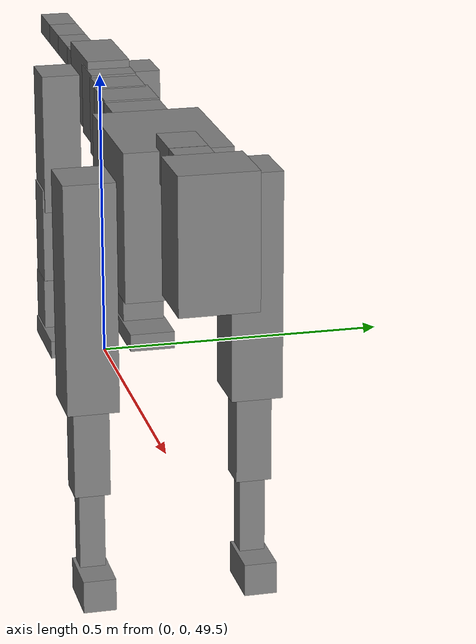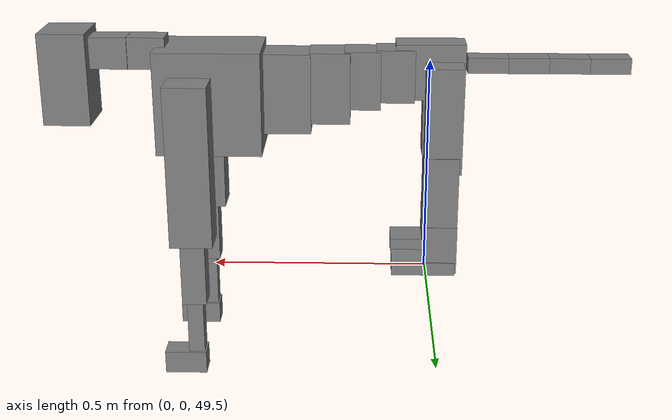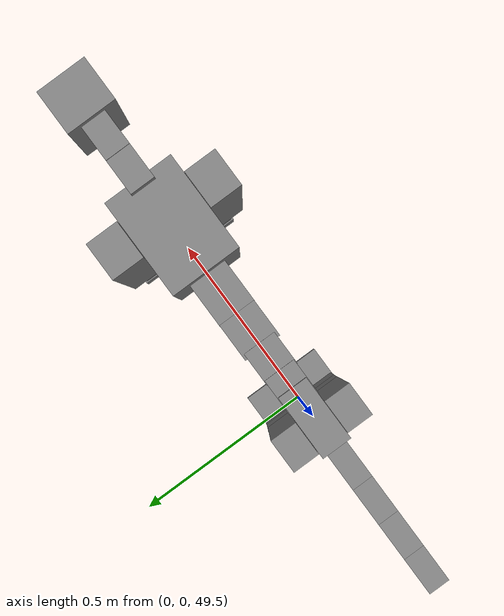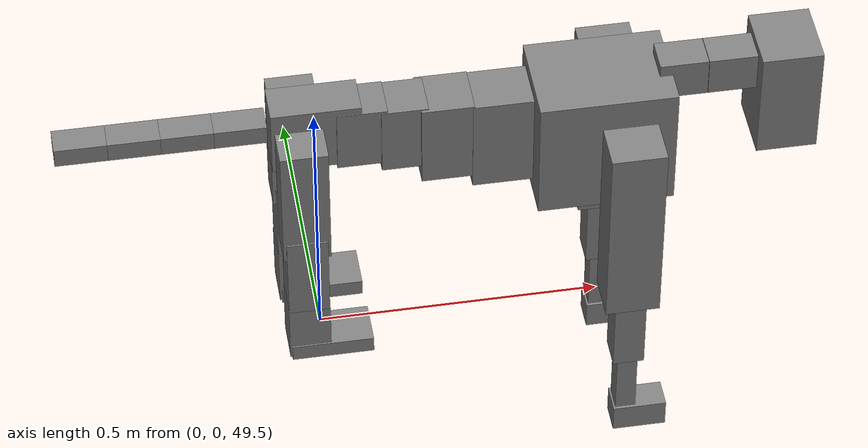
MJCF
<mujoco model="dog">

    <default>
        <joint armature="0.02" stiffness="1" damping="0.2" limited="true"/>
        <geom condim="3" friction="1 0.05 0.05" margin="0.01"/>
        <motor ctrllimited="true" ctrlrange="-1.0 1.0" forcelimited="true" gear="50"/>
    </default>

    <compiler inertiafromgeom="true" angle="radian"/>

    <option timestep="0.016" iterations="50" tolerance="1e-10" solver="Newton" jacobian="dense" cone="pyramidal"/>

    <size nconmax="20000" njmax="60000" nstack="5000000"/>
    <visual>
        <map force="0.1" zfar="30"/>
        <rgba haze="0.15 0.25 0.35 1"/>
        <quality shadowsize="2048"/>
        <global offwidth="800" offheight="800"/>
    </visual>

    <asset>
        <texture type="skybox" builtin="gradient" rgb1="0.3 0.5 0.7" rgb2="0 0 0" width="512" height="512"/>
        <texture name="texplane" type="2d" builtin="checker" rgb1=".2 .3 .4" rgb2=".1 0.15 0.2" width="512" height="512"
                 mark="cross" markrgb=".8 .8 .8"/>
        <texture name="texgeom" type="cube" builtin="flat" mark="cross" width="127" height="1278" rgb1="0.8 0.6 0.4"
                 rgb2="0.8 0.6 0.4" markrgb="1 1 1" random="0.01"/>

        <material name="matplane" reflectance="0.3" texture="texplane" texrepeat="1 1" texuniform="true"/>
        <material name="matgeom" texture="texgeom" texuniform="true" rgba="0.8 0.6 .4 1"/>
    </asset>

    <worldbody>
        <geom name="floor" pos="0 0 0" size="0 0 .25" type="plane" material="matplane" condim="3"/>

        <light directional="false" diffuse=".2 .2 .2" specular="0 0 0" pos="0 0 5" dir="0 0 -1" castshadow="false"/>
        <light mode="targetbodycom" target="torso" directional="false" diffuse=".8 .8 .8" specular="0.3 0.3 0.3"
               pos="0 0 4.0" dir="0 0 -1"/>

        <body name="root" pos="0 0 50">
            <freejoint name="root_1"/>
            <geom type="box" pos="0 0 -0.02" size="0.0774  0.0358  0.063" density="2030"/>

            <body name="spine1" pos="0.054 0 0">
                <joint name="spine1_y" axis="0 1 0" range="0 0.7" limited="true"/>
                <geom type="box" pos="0.02375 0 -0.03" size="0.04375  0.0375  0.05985" density="2030"/>

                <body name="spine2" pos="0.0612 0 0">
                    <joint name="spine2_y" axis="0 1 0" range="-0.15 0.15" limited="true"/>
                    <geom type="box" pos="0.03555  0  -0.04" size="0.04055  0.039  0.06615" density="2030"/>

                    <body name="spine3" pos="0.0730 0 0">
                        <joint name="spine3_y" axis="0 1 0" range="-0.15 0.15" limited="true"/>
                        <geom type="box" pos="0.03555  0  -0.057" size="0.04555  0.0445  0.081" density="2030"/>

                        <body name="spine4" pos="0.0780 0 0">
                            <joint name="spine4_y" axis="0 1 0" range="-0.15 0.15" limited="true"/>
                            <geom type="box" pos="0.05265  0  -0.07" size="0.05265  0.045  0.09135" density="2030"/>

                            <body name="torso" pos="0.1082 0 0">
                                <joint name="torso_y" axis="0 1 0" range="-0.15 0.15" limited="true"/>
                                <geom type="box" pos="0.11925  0  -0.085" size="0.11925  0.085  0.11745"
                                      density="2030"/>

                                <body name="neck1" pos="0.2160  0   0.0180">
                                    <joint name="neck1_y" axis="0 1 0" range="-1.2  -1" limited="true"/>
                                    <geom type="box" pos="0.0423  0  0" size="0.0423  0.03  0.036" density="2325"/>

                                    <body name="neck2" pos="0.0853  0  0">
                                        <joint name="neck2_y" axis="0 1 0" range="0.1  0" limited="true"/>
                                        <geom type="box" pos="0.0423  0  0" size="0.0423  0.03  0.036" density="2325"/>

                                        <body name="head" pos="0.0853  0  0">
                                            <joint name="head_y" axis="0 1 0" range="-0.3  -0.2" limited="true"/>
                                            <geom type="box" pos="0.0531  0  -0.055" size="0.0531  0.06  0.1044"
                                                  density="4030"/>

                                        </body>
                                    </body>
                                </body>

                                <body name="front_shoulder" pos="0.156  0   -0.0480">
                                    <joint name="front_shoulder_y" axis="0 1 0" range="-1 1.5" limited="true"/>
                                    <geom type="box" pos="0 0.13 -0.1580" size="0.0480  0.0410  0.1846" density="1158"/>
                                    <geom type="box" pos="0 -0.13 -0.1580" size="0.0480  0.0410  0.1846"
                                          density="1158"/>

                                    <body name="front_elbow" pos="0  0  -0.3160">
                                        <joint name="front_elbow_y" axis="0 1 0" range="-2 0" limited="true"/>
                                        <geom type="box" pos="0 0.13 -0.0858" size="0.0278  0.0284  0.0858"
                                              density="1081"/>
                                        <geom type="box" pos="0 -0.13 -0.0858" size="0.0278  0.0284  0.0858"
                                              density="1081"/>

                                        <body name="front_wrist" pos="0  0  -0.1715">
                                            <joint name="front_wrist_y" axis="0 1 0" range="-0.2 0" limited="true"/>
                                            <geom type="box" pos="0 0.13 -0.0696" size="0.0183  0.0204  0.0828"
                                                  density="1664"/>
                                            <geom type="box" pos="0 -0.13 -0.0696" size="0.0183  0.0204  0.0828"
                                                  density="1664"/>

                                            <body name="front_finger_end" pos="0  0  -0.1392">
                                                <joint name="front_finger_y" axis="0 1 0" range="-0.4 1"
                                                       limited="true"/>
                                                <geom type="box" pos="0.0261  0.13  -0.0114"
                                                      size="0.0478  0.0261  0.0264" density="1515"/>
                                                <geom type="box" pos="0.0261  -0.13  -0.0114"
                                                      size="0.0478  0.0261  0.0264" density="1515"/>

                                            </body>

                                        </body>
                                    </body>
                                </body>

                            </body>
                        </body>
                    </body>
                </body>
            </body>

            <body name="back_hip" pos="-0.03 0 -0.018">
                <joint name="back_hip_y" axis="0 1 0" range="-1.5 0.3" limited="true"/>
                <geom type="box" pos="0 0.07 -0.0977" size="0.0413  0.0324  0.1205" density="1154"/>
                <geom type="box" pos="0 -0.07 -0.0977" size="0.0413  0.0324  0.1205" density="1154"/>

                <body name="back_knee" pos="0  0  -0.1953">
                    <joint name="back_knee_y" axis="0 1 0" range="0 2.8" limited="true"/>
                    <geom type="box" pos="0 0.07 -0.0798" size="0.0359  0.0354  0.0953" density="1227"/>
                    <geom type="box" pos="0 -0.07 -0.0798" size="0.0359  0.0354  0.0953" density="1227"/>

                    <body name="back_ankle" pos="0  0  -0.1596">
                        <joint name="back_ankle_y" axis="0 1 0" range="-2.2 0" limited="true"/>
                        <geom type="box" pos="0 0.07 -0.0447" size="0.0364  0.0364  0.0560" density="1284"/>
                        <geom type="box" pos="0 -0.07 -0.0447" size="0.0364  0.0364  0.0560" density="1284"/>

                        <body name="back_toe_end" pos="0  0  -0.0895">
                            <joint name="back_toe_y" axis="0 1 0" range="-0.4 1" limited="true"/>
                            <geom type="box" pos="0.0393  0.07  -0.0004" size="0.0720  0.0393  0.0154" density="1515"/>
                            <geom type="box" pos="0.0393  -0.07  -0.0004" size="0.0720  0.0393  0.0154" density="1515"/>

                        </body>
                    </body>
                </body>
            </body>

            <body name="tail1" pos="-0.074 0 -0.006">
                <joint name="tail1_y" axis="0 1 0" range="-0.2 0.2" limited="true"/>
                <geom type="box" pos="-0.0536  0  0" size="0.045  0.025  0.0175" density="1587"/>

                <body name="tail2" pos="-0.09 0 0">
                    <joint name="tail2_y" axis="0 1 0" range="-0.2 0.2" limited="true"/>
                    <geom type="box" pos="-0.0536  0  0" size="0.045  0.025  0.0175" density="1587"/>

                    <body name="tail3" pos="-0.09 0 0">
                        <joint name="tail3_y" axis="0 1 0" range="-0.2 0.2" limited="true"/>
                        <geom type="box" pos="-0.0536  0  0" size="0.045  0.025  0.0175" density="1587"/>

                        <body name="tail4" pos="-0.09 0 0">
                            <joint name="tail4_y" axis="0 1 0" range="-0.2 0.2" limited="true"/>
                            <geom type="box" pos="-0.0536  0  0" size="0.045  0.025  0.0175" density="1587"/>

                        </body>
                    </body>
                </body>
            </body>
        </body>
    </worldbody>

    <actuator>
        <motor joint="spine1_y" forcerange="-150 150     "/>
        <motor joint="spine2_y" forcerange="-150 150     "/>
        <motor joint="spine3_y" forcerange="-150 150     "/>
        <motor joint="spine4_y" forcerange="-150 150     "/>
        <motor joint="torso_y" forcerange="-150 150     "/>
        <motor joint="neck1_y" forcerange="-100 100       "/>
        <motor joint="neck2_y" forcerange="-100 100       "/>
        <motor joint="head_y" forcerange="-150 150       "/>
        <motor joint="front_shoulder_y" forcerange="-184.72 188.61"/>
        <motor joint="front_elbow_y" forcerange="-112.20 194.46"/>
        <motor joint="front_wrist_y" forcerange="-75.60 87.20"/>
        <motor joint="front_finger_y" forcerange="-21.36 77.60"/>
        <motor joint="back_hip_y" forcerange="-243.23 389.09"/>
        <motor joint="back_knee_y" forcerange="-382.25 333.08"/>
        <motor joint="back_angle_y" forcerange="-231.88 249.97"/>
        <motor joint="back_toe_y" forcerange="-122.95 111.12"/>
        <motor joint="tail1_y" forcerange="-50 50     "/>
        <motor joint="tail2_y" forcerange="-50 50     "/>
        <motor joint="tail3_y" forcerange="-50 50     "/>
        <motor joint="tail4_y" forcerange="-50 50     "/>
    </actuator>
</mujoco>
